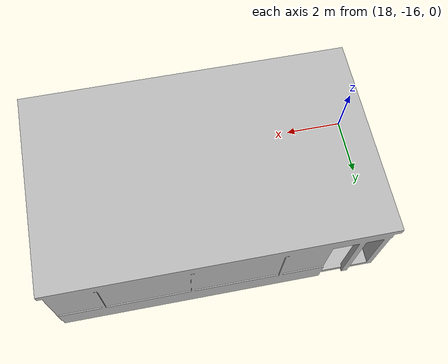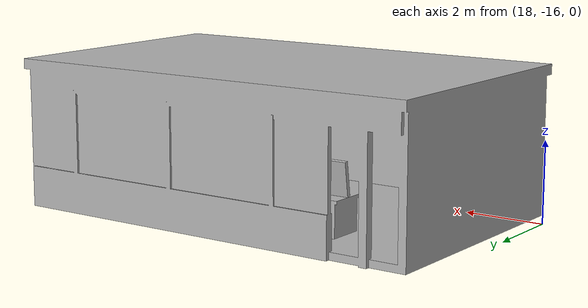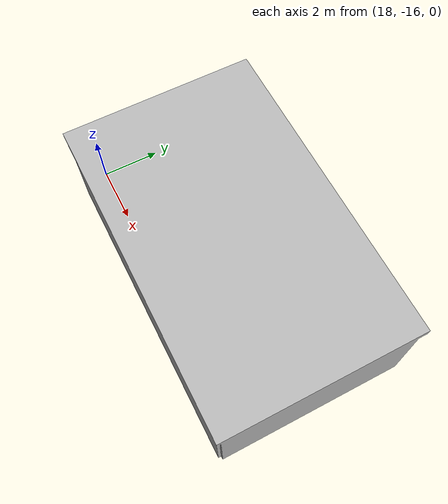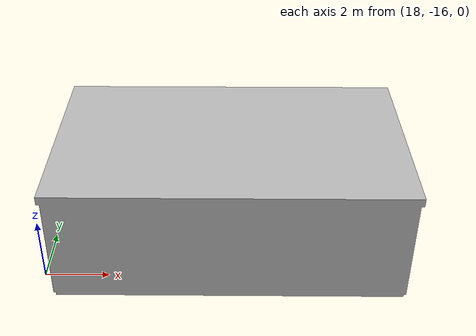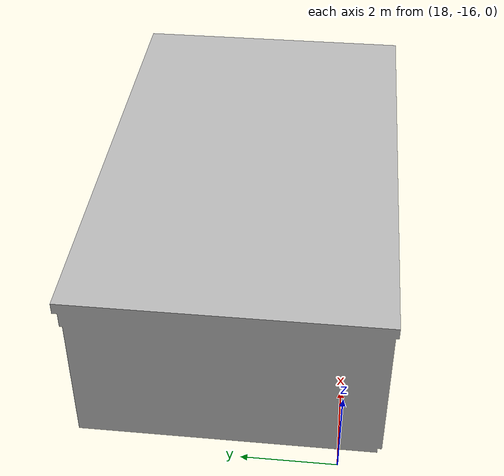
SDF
<?xml version="1.0"?>
<sdf version="1.7">
  <model name="control_room">
    <static>true</static>
    <link name="link">
      <visual name="visual">
        <geometry>
          <mesh><uri>model://control_room/meshes/control_room.obj</uri><scale>1 1 1</scale></mesh>
        </geometry>
      </visual>
      <collision name="collision">
        <geometry>
          <mesh><uri>model://control_room/meshes/control_room.obj</uri><scale>1 1 1</scale></mesh>
        </geometry>
      </collision>
    </link>
  </model>
</sdf>
